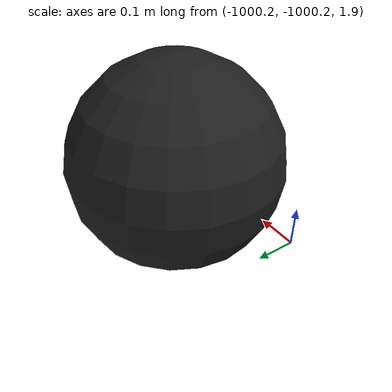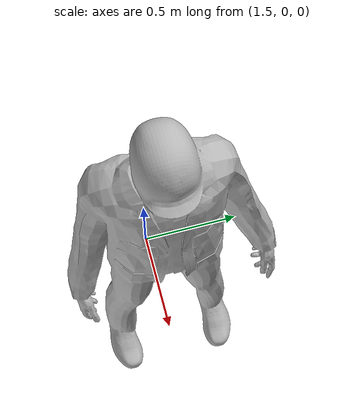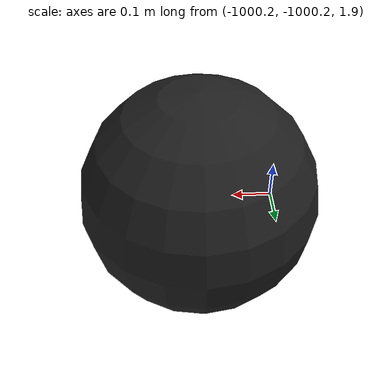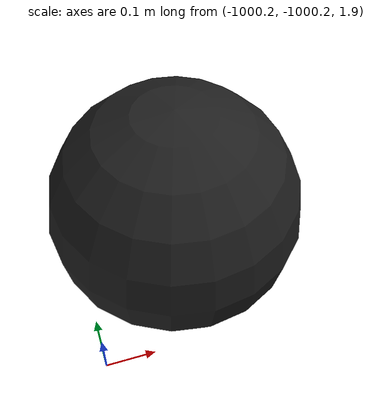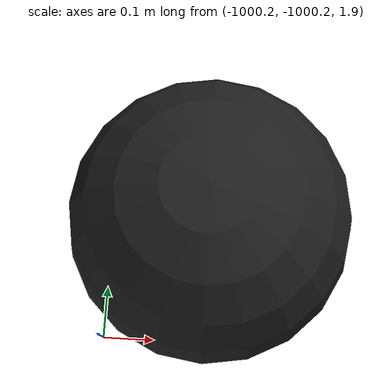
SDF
<?xml version="1.0" ?>
<?xml-model href="http://sdformat.org/schemas/root.xsd" schematypens="http://www.w3.org/2001/XMLSchema"?>
<sdf version="1.5">
  <world name="default">
    <plugin name="mrs_gazebo_static_transform_republisher_plugin" filename="libMRSGazeboStaticTransformRepublisher.so"/>
    <plugin name="spawner_gazebo_plugin" filename="libSpawnerGazeboPlugin.so">
      <uav_name>uav1</uav_name>
    </plugin>
    <!-- coordinate system {-->
    <spherical_coordinates>
      <surface_model>EARTH_WGS84</surface_model>
      <latitude_deg>47.397743</latitude_deg>
      <longitude_deg>8.545594</longitude_deg>
      <elevation>0.0</elevation>
      <heading_deg>0</heading_deg>
    </spherical_coordinates>

    <!-- physics engine {-->
    <physics name="default_physics" default="0" type="ode">
      <gravity>0 0 -9.8066</gravity>
      <ode>
        <solver>
          <type>quick</type>
          <iters>10</iters>
          <sor>1.3</sor>
          <use_dynamic_moi_rescaling>0</use_dynamic_moi_rescaling>
        </solver>
        <constraints>
          <cfm>0</cfm>
          <erp>0.2</erp>
          <contact_max_correcting_vel>1000</contact_max_correcting_vel>
          <contact_surface_layer>0.001</contact_surface_layer>
        </constraints>
      </ode>
      <max_step_size>0.004</max_step_size>
      <real_time_factor>1</real_time_factor>
      <real_time_update_rate>250</real_time_update_rate>
      <magnetic_field>6.0e-06 2.3e-05 -4.2e-05</magnetic_field>
    </physics>

    <!-- turn off shadows {-->
    <scene>
      <shadows>false</shadows>
      <sky>
        <clouds/>
      </sky>
    </scene>

    <!-- sun {-->
    <light type="directional" name="sun">
      <cast_shadows>true</cast_shadows>
      <pose>250 250 600 0 0 0</pose>
      <diffuse>0.8 0.8 0.8 1</diffuse>
      <specular>0.2 0.2 0.2 1</specular>
      <attenuation>
        <range>1000</range>
        <constant>0.9</constant>
        <linear>0.01</linear>
        <quadratic>0.001</quadratic>
      </attenuation>
      <direction>0 0 -1</direction>
    </light>

    <!-- THE VOID (for spawning objects out of camera view) {-->
    <model name='the_void'>
      <static>1</static>
      <link name='link'>
        <pose frame=''>0 0 0.1 0 -0 0</pose>
        <visual name='the_void'>
          <pose frame=''>0 0 2 0 -0 0</pose>
          <geometry>
            <sphere>
              <radius>0.25</radius>
            </sphere>
          </geometry>
          <material>
            <script>
              <uri>file://media/materials/scripts/Gazebo.material</uri>
              <name>Gazebo/Black</name>
            </script>
          </material>
        </visual>
        <self_collide>0</self_collide>
        <enable_wind>0</enable_wind>
        <kinematic>0</kinematic>
      </link>
      <pose frame=''>-1000 -1000 0 0 0 0</pose>
    </model>

    <!-- Human worker {-->
    <include>
      <uri>model://jeff_electrician</uri>
      <pose> 2 0 0 0 0 0 </pose>
      <name>jeff_electrician</name>
    </include>

  <!-- user camera {-->
    <gui>
      <camera name="camera">
        <pose>-60 -100 30 0 0.4 0.89</pose>
      </camera>
    </gui>

    <!-- GUI frame synchronization {-->
    <plugin name="mrs_gazebo_rviz_cam_synchronizer" filename="libMRSGazeboRvizCameraSynchronizer.so" >
      <target_frame_id>gazebo_user_camera</target_frame_id>
      <world_origin_frame_id>uav1/gps_origin</world_origin_frame_id>
      <frame_to_follow>uav1::base_link</frame_to_follow>
    </plugin>

  </world>
</sdf>

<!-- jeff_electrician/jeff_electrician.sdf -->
<sdf version="1.0">
<model name="jeff_electrician">
  <pose>0 0 0.5 0 0 0</pose>
  <static>true</static>
    <link name="link">
      <inertial>
        <mass>80.0</mass>
        <inertia> <!-- inertias are tricky to compute -->
          <!-- http://gazebosim.org/tutorials?tut=inertia&cat=build_robot -->
          <ixx>-0.186819 </ixx>
          <ixy>-0.000257 </ixy>
          <ixz>-0.000008</ixz>
          <iyy>0.005504</iyy>
          <iyz>-0.003203</iyz>
          <izz>-0.183004</izz>
        </inertia>
      </inertial>
      <collision name="collision">
        <geometry>
          <mesh>
            <uri>model://jeff_electrician/jeff_electrician.dae</uri>
          </mesh>
        </geometry>
      </collision>
      <visual name="visual">
        <geometry>
          <mesh>
            <uri>model://jeff_electrician/jeff_electrician.dae</uri>
          </mesh>
        </geometry>
      </visual>
    </link>
  	<plugin name="dynamic_model_plugin" filename="libDynamicModelPlugin.so">
       <update_rate>60</update_rate>
       <initial_on>false</initial_on>
       <trajectory_file>sample_trajectory.txt</trajectory_file>
       <loop_enabled>false</loop_enabled>
       <use_segmentation>true</use_segmentation>
       <use_directional_yaw>true</use_directional_yaw>
     </plugin>
  </model>
</sdf>
